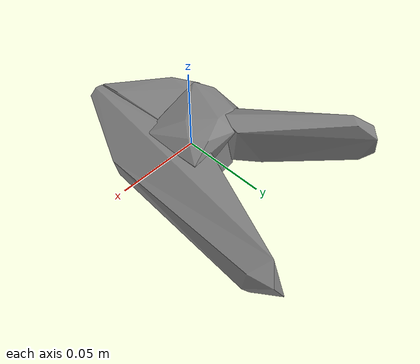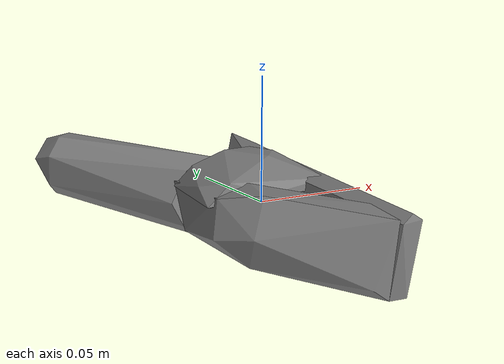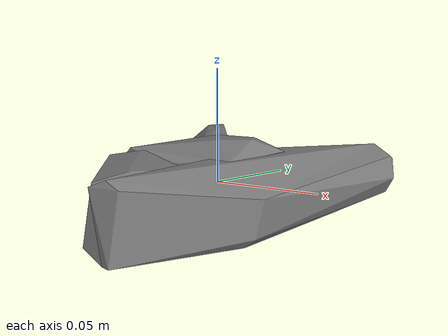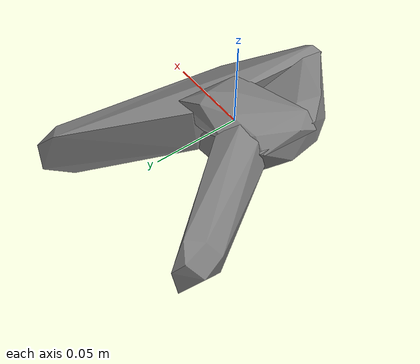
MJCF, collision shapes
<mujoco model="large_clamp">
  <compiler angle="radian" />

  <asset>
    <mesh name="large_clamp_visual_mesh" file="large_clamp/textured.obj" />
    <mesh name="large_clamp_collision_mesh_0" file="large_clamp/textured_coacd_0.stl" />
    <mesh name="large_clamp_collision_mesh_1" file="large_clamp/textured_coacd_1.stl" />
    <mesh name="large_clamp_collision_mesh_2" file="large_clamp/textured_coacd_2.stl" />
    <mesh name="large_clamp_collision_mesh_3" file="large_clamp/textured_coacd_3.stl" />
    <texture name="large_clamp_texture" type="2d" file="large_clamp/texture_map.png" />
    <material name="large_clamp_material" texture="large_clamp_texture" />
  </asset>

  <worldbody>
    <body name="large_clamp" pos="0 0 0" euler="0 0 0">
      <freejoint name="large_clamp_joint" />
      <geom name="large_clamp_visual_geom" type="mesh" mesh="large_clamp_visual_mesh" material="large_clamp_material" pos="0.0023853062583482332 0.021571805079263193 -0.017436900351502183" euler="0 0 0" contype="0" conaffinity="0" group="0" />
      <geom name="large_clamp_collision_geom_0" type="mesh" mesh="large_clamp_collision_mesh_0" pos="0.0023853062583482332 0.021571805079263193 -0.017436900351502183" euler="0 0 0" contype="1" conaffinity="1" group="3" />
      <geom name="large_clamp_collision_geom_1" type="mesh" mesh="large_clamp_collision_mesh_1" pos="0.0023853062583482332 0.021571805079263193 -0.017436900351502183" euler="0 0 0" contype="1" conaffinity="1" group="3" />
      <geom name="large_clamp_collision_geom_2" type="mesh" mesh="large_clamp_collision_mesh_2" pos="0.0023853062583482332 0.021571805079263193 -0.017436900351502183" euler="0 0 0" contype="1" conaffinity="1" group="3" />
      <geom name="large_clamp_collision_geom_3" type="mesh" mesh="large_clamp_collision_mesh_3" pos="0.0023853062583482332 0.021571805079263193 -0.017436900351502183" euler="0 0 0" contype="1" conaffinity="1" group="3" />
      <inertial pos="0 0 0" euler="0 0 0" mass="0.125" diaginertia="0.001 0.001 0.001" />
    </body>
  </worldbody>
</mujoco>
